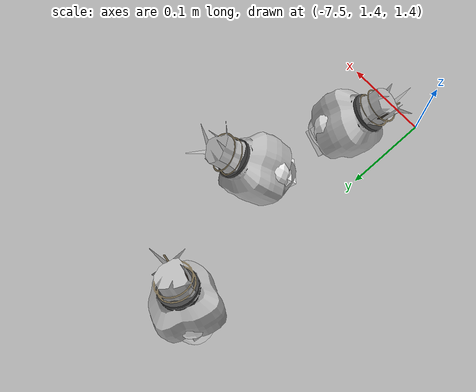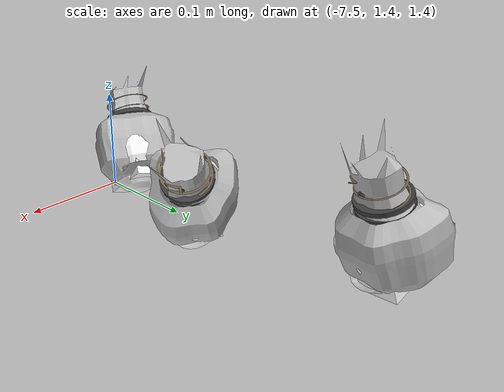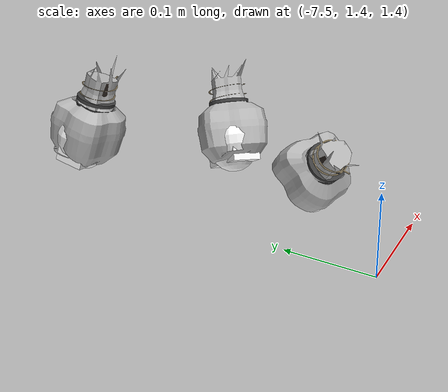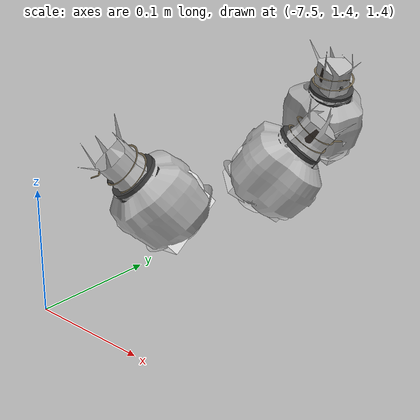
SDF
<sdf version="1.11">
 <world name="peach_orchard">
  <model name="ground">
   <static>true</static>
   <link name="link">
    <visual name="soil">
     <geometry><plane><normal>0 0 1</normal><size>32 22</size></plane></geometry>
     <material>
      <ambient>1 1 1 1</ambient>
      <diffuse>1 1 1 1</diffuse>
      <specular>0.1 0.1 0.1 1</specular>
      <pbr>
       <metal>
        <albedo_map>textures/soil_albedo.png</albedo_map>
        <normal_map type="tangent">textures/soil_normal.png</normal_map>
        <roughness>0.95</roughness>
        <metalness>0</metalness>
       </metal>
      </pbr>
     </material>
    </visual>
    <collision name="c_soil">
     <geometry><plane><normal>0 0 1</normal><size>32 22</size></plane></geometry>
    </collision>
   </link>
  </model>
  <model name="peach_tree_r0_t4_00">
   <pose>-7.49903 1.73511 1.43832 0 0.334461 -0.421411</pose>
   <static>true</static>
   <link name="bag">
    <visual name="bag_mesh">
     <pose>0 0 0.0472006 0 0 -0</pose>
     <geometry>
      <mesh><uri>model://peach_sim/meshes/bagged_peach.glb</uri><scale>0.90994 1.00979 1.07274</scale></mesh>
     </geometry>
    </visual>
    <visual name="body">
     <pose>0 0 0.0292006 0 0 0</pose>
     <geometry><ellipsoid><radii>0.0341228 0.0262544 0.0315367</radii></ellipsoid></geometry>
     <material>
      <ambient>1 1 1 1</ambient>
      <diffuse>1 1 1 1</diffuse>
      <specular>0.1 0.1 0.1 1</specular>
      <pbr>
       <metal>
        <albedo_map>textures/paper_bag_albedo.png</albedo_map>
        <normal_map type="tangent">textures/paper_bag_normal.png</normal_map>
        <roughness>0.72</roughness>
        <metalness>0</metalness>
       </metal>
      </pbr>
     </material>
    </visual>
    <visual name="bottom_fold">
     <pose>0 0 0.012 0 0 0.35</pose>
     <geometry><box><size>0.0528903 0.0301926 0.022</size></box></geometry>
     <material>
      <ambient>1 1 1 1</ambient>
      <diffuse>1 1 1 1</diffuse>
      <specular>0.1 0.1 0.1 1</specular>
      <pbr>
       <metal>
        <albedo_map>textures/paper_bag_albedo.png</albedo_map>
        <normal_map type="tangent">textures/paper_bag_normal.png</normal_map>
        <roughness>0.8</roughness>
        <metalness>0</metalness>
       </metal>
      </pbr>
     </material>
    </visual>
    <visual name="fruit">
     <pose>0 0 0.0179759 0 0 0</pose>
     <geometry><sphere><radius>0.024935</radius></sphere></geometry>
     <material>
      <ambient>1 1 1 1</ambient>
      <diffuse>1 1 1 1</diffuse>
      <specular>0.1 0.1 0.1 1</specular>
      <pbr>
       <metal>
        <albedo_map>textures/fruit_skin_albedo.png</albedo_map>
        <normal_map type="tangent">textures/fruit_skin_normal.png</normal_map>
        <roughness>0.55</roughness>
        <metalness>0</metalness>
       </metal>
      </pbr>
     </material>
    </visual>
    <visual name="neck">
     <pose>0 0 0.0674013 0 0 0</pose>
     <geometry><cylinder><radius>0.013</radius><length>0.018</length></cylinder></geometry>
     <material>
      <ambient>1 1 1 1</ambient>
      <diffuse>1 1 1 1</diffuse>
      <specular>0.1 0.1 0.1 1</specular>
      <pbr>
       <metal>
        <albedo_map>textures/paper_bag_albedo.png</albedo_map>
        <normal_map type="tangent">textures/paper_bag_normal.png</normal_map>
        <roughness>0.75</roughness>
        <metalness>0</metalness>
       </metal>
      </pbr>
     </material>
    </visual>
    <visual name="gather">
     <pose>0 0 0.0484013 0 0 0</pose>
     <geometry><cylinder><radius>0.019</radius><length>0.02</length></cylinder></geometry>
     <material>
      <ambient>1 1 1 1</ambient>
      <diffuse>1 1 1 1</diffuse>
      <specular>0.1 0.1 0.1 1</specular>
      <pbr>
       <metal>
        <albedo_map>textures/paper_bag_albedo.png</albedo_map>
        <normal_map type="tangent">textures/paper_bag_normal.png</normal_map>
        <roughness>0.8</roughness>
        <metalness>0</metalness>
       </metal>
      </pbr>
     </material>
    </visual>
    <visual name="inner_paper">
     <pose>0 0 0.0724013 0 0 0</pose>
     <geometry><cylinder><radius>0.01</radius><length>0.008</length></cylinder></geometry>
     <material>
      <ambient>0.180392 0.14902 0.133333 1</ambient>
      <diffuse>0.180392 0.14902 0.133333 1</diffuse>
      <specular>0.1 0.1 0.1 1</specular>
     </material>
    </visual>
    <visual name="wire_0">
     <pose>0 0 0.0624013 0 0 0</pose>
     <geometry><cylinder><radius>0.0205</radius><length>0.0035</length></cylinder></geometry>
     <material>
      <ambient>0.25 0.25 0.25 1</ambient>
      <diffuse>0.25 0.25 0.25 1</diffuse>
      <specular>0.1 0.1 0.1 1</specular>
     </material>
    </visual>
    <visual name="wire_1">
     <pose>0 0 0.0694013 0 0 0</pose>
     <geometry><cylinder><radius>0.0205</radius><length>0.0035</length></cylinder></geometry>
     <material>
      <ambient>0.25 0.25 0.25 1</ambient>
      <diffuse>0.25 0.25 0.25 1</diffuse>
      <specular>0.1 0.1 0.1 1</specular>
     </material>
    </visual>
    <visual name="wire_tail">
     <pose>0.01 0 0.0704013 0 0.521618 0</pose>
     <geometry><cylinder><radius>0.0012</radius><length>0.026</length></cylinder></geometry>
     <material>
      <ambient>0.25 0.25 0.25 1</ambient>
      <diffuse>0.25 0.25 0.25 1</diffuse>
      <specular>0.1 0.1 0.1 1</specular>
     </material>
    </visual>
    <collision name="c_body">
     <pose>0 0 0.0292006 0 0 0</pose>
     <geometry><cylinder><radius>0.0341228</radius><length>0.0584013</length></cylinder></geometry>
    </collision>
   </link>
  </model>
  <model name="peach_tree_r0_t4_02">
   <pose>-7.45 1.57901 1.45 0 0.711458 0.627424</pose>
   <static>true</static>
   <link name="bag">
    <visual name="bag_mesh">
     <pose>0 0 0.0448486 0 0 0</pose>
     <geometry>
      <mesh><uri>model://peach_sim/meshes/bagged_peach.glb</uri><scale>0.933196 1.01063 1.01929</scale></mesh>
     </geometry>
    </visual>
    <visual name="body">
     <pose>0 0 0.0268486 0 0 0</pose>
     <geometry><ellipsoid><radii>0.0349948 0.0262764 0.0289965</radii></ellipsoid></geometry>
     <material>
      <ambient>1 1 1 1</ambient>
      <diffuse>1 1 1 1</diffuse>
      <specular>0.1 0.1 0.1 1</specular>
      <pbr>
       <metal>
        <albedo_map>textures/paper_bag_albedo.png</albedo_map>
        <normal_map type="tangent">textures/paper_bag_normal.png</normal_map>
        <roughness>0.72</roughness>
        <metalness>0</metalness>
       </metal>
      </pbr>
     </material>
    </visual>
    <visual name="bottom_fold">
     <pose>0 0 0.012 0 0 0.35</pose>
     <geometry><box><size>0.054242 0.0302178 0.022</size></box></geometry>
     <material>
      <ambient>1 1 1 1</ambient>
      <diffuse>1 1 1 1</diffuse>
      <specular>0.1 0.1 0.1 1</specular>
      <pbr>
       <metal>
        <albedo_map>textures/paper_bag_albedo.png</albedo_map>
        <normal_map type="tangent">textures/paper_bag_normal.png</normal_map>
        <roughness>0.8</roughness>
        <metalness>0</metalness>
       </metal>
      </pbr>
     </material>
    </visual>
    <visual name="fruit">
     <pose>0 0 0.017746 0 0 0</pose>
     <geometry><sphere><radius>0.0246958</radius></sphere></geometry>
     <material>
      <ambient>1 1 1 1</ambient>
      <diffuse>1 1 1 1</diffuse>
      <specular>0.1 0.1 0.1 1</specular>
      <pbr>
       <metal>
        <albedo_map>textures/fruit_skin_albedo.png</albedo_map>
        <normal_map type="tangent">textures/fruit_skin_normal.png</normal_map>
        <roughness>0.55</roughness>
        <metalness>0</metalness>
       </metal>
      </pbr>
     </material>
    </visual>
    <visual name="neck">
     <pose>0 0 0.0626972 0 0 0</pose>
     <geometry><cylinder><radius>0.013</radius><length>0.018</length></cylinder></geometry>
     <material>
      <ambient>1 1 1 1</ambient>
      <diffuse>1 1 1 1</diffuse>
      <specular>0.1 0.1 0.1 1</specular>
      <pbr>
       <metal>
        <albedo_map>textures/paper_bag_albedo.png</albedo_map>
        <normal_map type="tangent">textures/paper_bag_normal.png</normal_map>
        <roughness>0.75</roughness>
        <metalness>0</metalness>
       </metal>
      </pbr>
     </material>
    </visual>
    <visual name="gather">
     <pose>0 0 0.0436972 0 0 0</pose>
     <geometry><cylinder><radius>0.019</radius><length>0.02</length></cylinder></geometry>
     <material>
      <ambient>1 1 1 1</ambient>
      <diffuse>1 1 1 1</diffuse>
      <specular>0.1 0.1 0.1 1</specular>
      <pbr>
       <metal>
        <albedo_map>textures/paper_bag_albedo.png</albedo_map>
        <normal_map type="tangent">textures/paper_bag_normal.png</normal_map>
        <roughness>0.8</roughness>
        <metalness>0</metalness>
       </metal>
      </pbr>
     </material>
    </visual>
    <visual name="inner_paper">
     <pose>0 0 0.0676972 0 0 0</pose>
     <geometry><cylinder><radius>0.01</radius><length>0.008</length></cylinder></geometry>
     <material>
      <ambient>0.180392 0.14902 0.133333 1</ambient>
      <diffuse>0.180392 0.14902 0.133333 1</diffuse>
      <specular>0.1 0.1 0.1 1</specular>
     </material>
    </visual>
    <visual name="wire_0">
     <pose>0 0 0.0576972 0 0 0</pose>
     <geometry><cylinder><radius>0.0205</radius><length>0.0035</length></cylinder></geometry>
     <material>
      <ambient>0.25 0.25 0.25 1</ambient>
      <diffuse>0.25 0.25 0.25 1</diffuse>
      <specular>0.1 0.1 0.1 1</specular>
     </material>
    </visual>
    <visual name="wire_1">
     <pose>0 0 0.0646972 0 0 0</pose>
     <geometry><cylinder><radius>0.0205</radius><length>0.0035</length></cylinder></geometry>
     <material>
      <ambient>0.25 0.25 0.25 1</ambient>
      <diffuse>0.25 0.25 0.25 1</diffuse>
      <specular>0.1 0.1 0.1 1</specular>
     </material>
    </visual>
    <visual name="wire_tail">
     <pose>0.01 0 0.0656972 0 0.521618 0</pose>
     <geometry><cylinder><radius>0.0012</radius><length>0.026</length></cylinder></geometry>
     <material>
      <ambient>0.25 0.25 0.25 1</ambient>
      <diffuse>0.25 0.25 0.25 1</diffuse>
      <specular>0.1 0.1 0.1 1</specular>
     </material>
    </visual>
    <collision name="c_body">
     <pose>0 0 0.0268486 0 0 0</pose>
     <geometry><cylinder><radius>0.0349948</radius><length>0.0536972</length></cylinder></geometry>
    </collision>
   </link>
  </model>
  <model name="peach_tree_r0_t4_03">
   <pose>-7.45 1.50625 1.45 0 0.719947 -2.08197</pose>
   <static>true</static>
   <link name="bag">
    <visual name="bag_mesh">
     <pose>0 0 0.0444934 0 0 -0</pose>
     <geometry>
      <mesh><uri>model://peach_sim/meshes/bagged_peach.glb</uri><scale>0.910715 0.992237 1.01121</scale></mesh>
     </geometry>
    </visual>
    <visual name="body">
     <pose>0 0 0.0264934 0 0 0</pose>
     <geometry><ellipsoid><radii>0.0341518 0.0257982 0.0286128</radii></ellipsoid></geometry>
     <material>
      <ambient>1 1 1 1</ambient>
      <diffuse>1 1 1 1</diffuse>
      <specular>0.1 0.1 0.1 1</specular>
      <pbr>
       <metal>
        <albedo_map>textures/paper_bag_albedo.png</albedo_map>
        <normal_map type="tangent">textures/paper_bag_normal.png</normal_map>
        <roughness>0.72</roughness>
        <metalness>0</metalness>
       </metal>
      </pbr>
     </material>
    </visual>
    <visual name="bottom_fold">
     <pose>0 0 0.012 0 0 0.35</pose>
     <geometry><box><size>0.0529353 0.0296679 0.022</size></box></geometry>
     <material>
      <ambient>1 1 1 1</ambient>
      <diffuse>1 1 1 1</diffuse>
      <specular>0.1 0.1 0.1 1</specular>
      <pbr>
       <metal>
        <albedo_map>textures/paper_bag_albedo.png</albedo_map>
        <normal_map type="tangent">textures/paper_bag_normal.png</normal_map>
        <roughness>0.8</roughness>
        <metalness>0</metalness>
       </metal>
      </pbr>
     </material>
    </visual>
    <visual name="fruit">
     <pose>0 0 0.0175157 0 0 0</pose>
     <geometry><sphere><radius>0.0244563</radius></sphere></geometry>
     <material>
      <ambient>1 1 1 1</ambient>
      <diffuse>1 1 1 1</diffuse>
      <specular>0.1 0.1 0.1 1</specular>
      <pbr>
       <metal>
        <albedo_map>textures/fruit_skin_albedo.png</albedo_map>
        <normal_map type="tangent">textures/fruit_skin_normal.png</normal_map>
        <roughness>0.55</roughness>
        <metalness>0</metalness>
       </metal>
      </pbr>
     </material>
    </visual>
    <visual name="neck">
     <pose>0 0 0.0619867 0 0 0</pose>
     <geometry><cylinder><radius>0.013</radius><length>0.018</length></cylinder></geometry>
     <material>
      <ambient>1 1 1 1</ambient>
      <diffuse>1 1 1 1</diffuse>
      <specular>0.1 0.1 0.1 1</specular>
      <pbr>
       <metal>
        <albedo_map>textures/paper_bag_albedo.png</albedo_map>
        <normal_map type="tangent">textures/paper_bag_normal.png</normal_map>
        <roughness>0.75</roughness>
        <metalness>0</metalness>
       </metal>
      </pbr>
     </material>
    </visual>
    <visual name="gather">
     <pose>0 0 0.0429867 0 0 0</pose>
     <geometry><cylinder><radius>0.019</radius><length>0.02</length></cylinder></geometry>
     <material>
      <ambient>1 1 1 1</ambient>
      <diffuse>1 1 1 1</diffuse>
      <specular>0.1 0.1 0.1 1</specular>
      <pbr>
       <metal>
        <albedo_map>textures/paper_bag_albedo.png</albedo_map>
        <normal_map type="tangent">textures/paper_bag_normal.png</normal_map>
        <roughness>0.8</roughness>
        <metalness>0</metalness>
       </metal>
      </pbr>
     </material>
    </visual>
    <visual name="inner_paper">
     <pose>0 0 0.0669867 0 0 0</pose>
     <geometry><cylinder><radius>0.01</radius><length>0.008</length></cylinder></geometry>
     <material>
      <ambient>0.180392 0.14902 0.133333 1</ambient>
      <diffuse>0.180392 0.14902 0.133333 1</diffuse>
      <specular>0.1 0.1 0.1 1</specular>
     </material>
    </visual>
    <visual name="wire_0">
     <pose>0 0 0.0569867 0 0 0</pose>
     <geometry><cylinder><radius>0.0205</radius><length>0.0035</length></cylinder></geometry>
     <material>
      <ambient>0.25 0.25 0.25 1</ambient>
      <diffuse>0.25 0.25 0.25 1</diffuse>
      <specular>0.1 0.1 0.1 1</specular>
     </material>
    </visual>
    <visual name="wire_1">
     <pose>0 0 0.0639867 0 0 0</pose>
     <geometry><cylinder><radius>0.0205</radius><length>0.0035</length></cylinder></geometry>
     <material>
      <ambient>0.25 0.25 0.25 1</ambient>
      <diffuse>0.25 0.25 0.25 1</diffuse>
      <specular>0.1 0.1 0.1 1</specular>
     </material>
    </visual>
    <visual name="wire_tail">
     <pose>0.01 0 0.0649867 0 0.521618 0</pose>
     <geometry><cylinder><radius>0.0012</radius><length>0.026</length></cylinder></geometry>
     <material>
      <ambient>0.25 0.25 0.25 1</ambient>
      <diffuse>0.25 0.25 0.25 1</diffuse>
      <specular>0.1 0.1 0.1 1</specular>
     </material>
    </visual>
    <collision name="c_body">
     <pose>0 0 0.0264934 0 0 0</pose>
     <geometry><cylinder><radius>0.0341518</radius><length>0.0529867</length></cylinder></geometry>
    </collision>
   </link>
  </model>
 </world>
</sdf>
